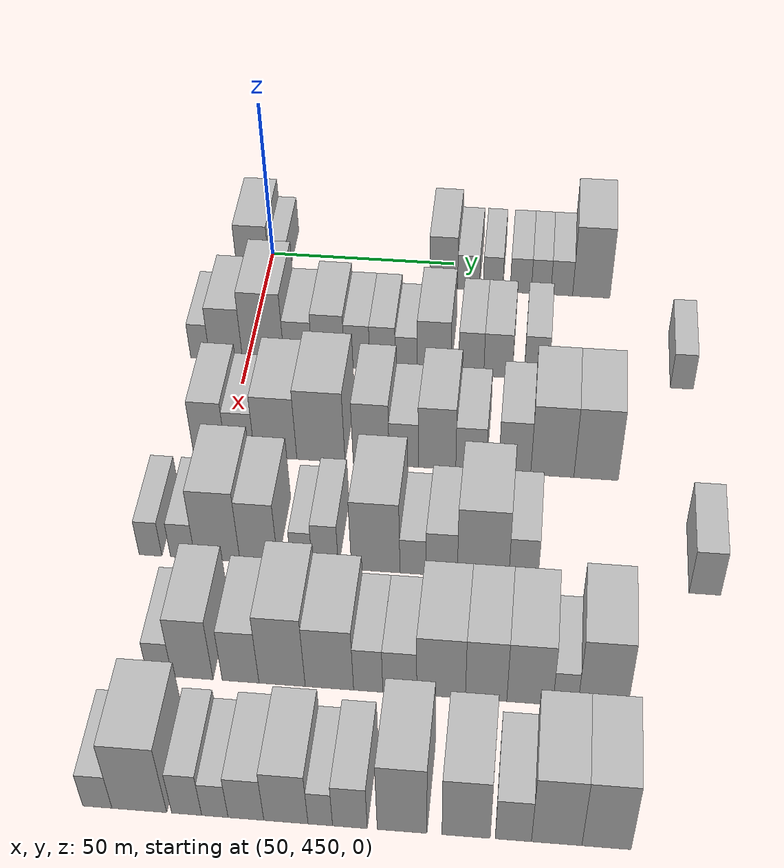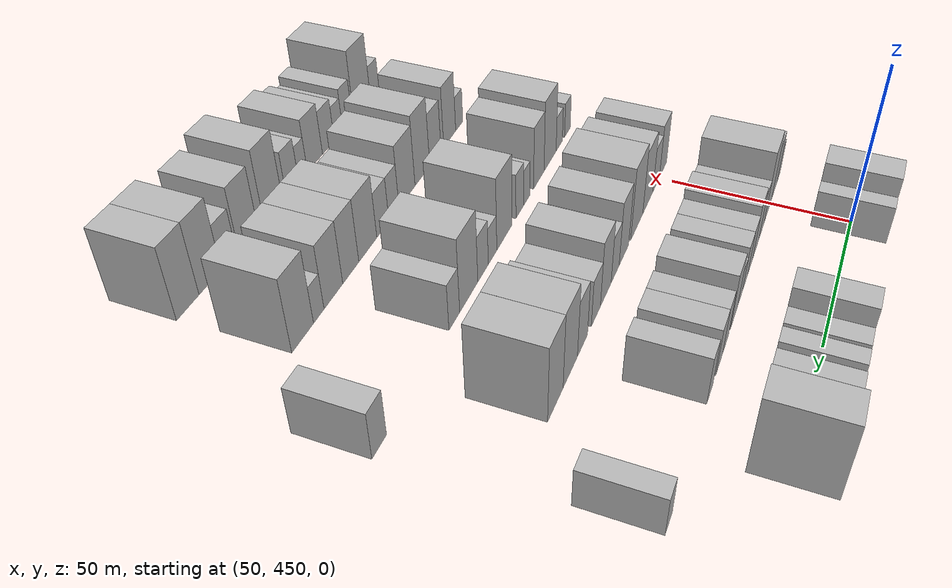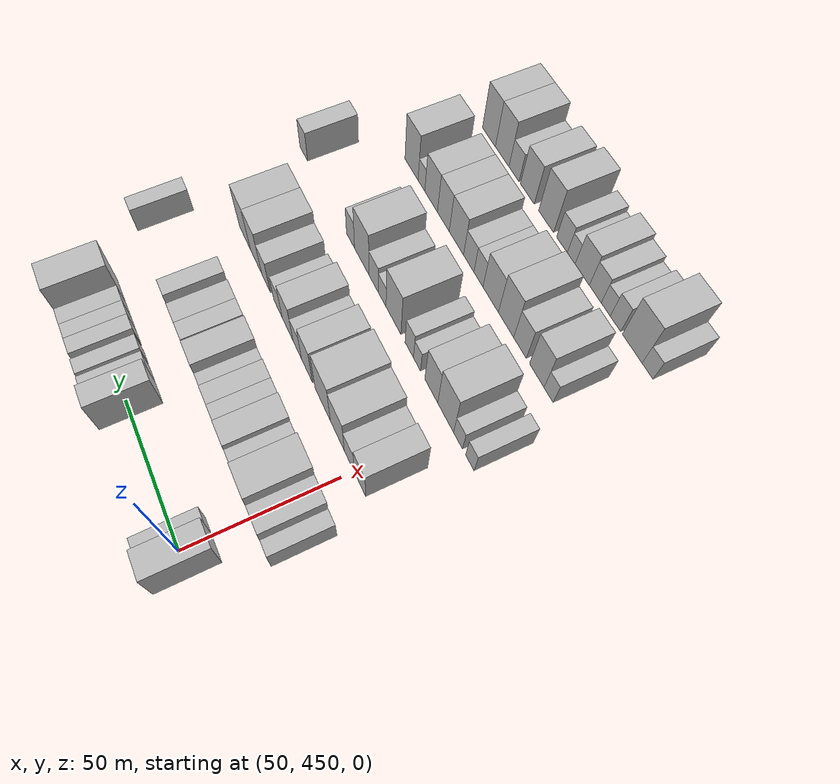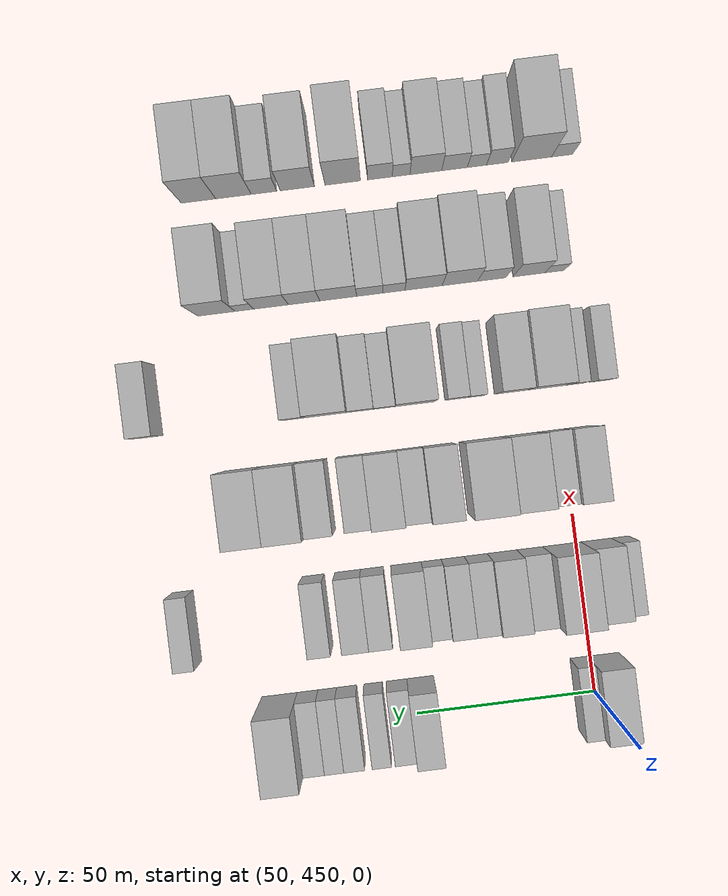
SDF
<sdf version="1.6">
 <world name="default">
  <model name="building_102">
   <static>1</static>
   <pose>50.0000 446.3662 0 0.000000 0.000000 0.000000</pose>
   <link name="link">
    <pose>0 0 9.00 0 0 0</pose>
    <collision name="collision"><geometry><box><size>20.0000 8.8635 18.0000</size></box></geometry></collision>
    <visual name="visual">
     <cast_shadows>0</cast_shadows>
     <geometry><box><size>20.0000 8.8635 18.0000</size></box></geometry>
     <material>
      <script>
       <uri>model://HANNAS_wall/materials/scripts</uri>
       <uri>model://HANNAS_wall/materials/textures</uri>
       <name>vrc/HANNAS_wall</name>
      </script>
     </material>
    </visual>
   </link>
  </model>
  <model name="building_103">
   <static>1</static>
   <pose>50.0000 453.2689 0 0.000000 0.000000 0.000000</pose>
   <link name="link">
    <pose>0 0 6.00 0 0 0</pose>
    <collision name="collision"><geometry><box><size>20.0000 4.9417 12.0000</size></box></geometry></collision>
    <visual name="visual">
     <cast_shadows>0</cast_shadows>
     <geometry><box><size>20.0000 4.9417 12.0000</size></box></geometry>
     <material>
      <script>
       <uri>model://HANNAS_wall/materials/scripts</uri>
       <uri>model://HANNAS_wall/materials/textures</uri>
       <name>vrc/HANNAS_wall</name>
      </script>
     </material>
    </visual>
   </link>
  </model>
  <model name="building_104">
   <static>1</static>
   <pose>50.0000 497.9549 0 0.000000 0.000000 0.000000</pose>
   <link name="link">
    <pose>0 0 9.00 0 0 0</pose>
    <collision name="collision"><geometry><box><size>20.0000 7.4768 18.0000</size></box></geometry></collision>
    <visual name="visual">
     <cast_shadows>0</cast_shadows>
     <geometry><box><size>20.0000 7.4768 18.0000</size></box></geometry>
     <material>
      <script>
       <uri>model://HANNAS_wall/materials/scripts</uri>
       <uri>model://HANNAS_wall/materials/textures</uri>
       <name>vrc/HANNAS_wall</name>
      </script>
     </material>
    </visual>
   </link>
  </model>
  <model name="building_105">
   <static>1</static>
   <pose>50.0000 504.6402 0 0.000000 0.000000 0.000000</pose>
   <link name="link">
    <pose>0 0 6.00 0 0 0</pose>
    <collision name="collision"><geometry><box><size>20.0000 5.8939 12.0000</size></box></geometry></collision>
    <visual name="visual">
     <cast_shadows>0</cast_shadows>
     <geometry><box><size>20.0000 5.8939 12.0000</size></box></geometry>
     <material>
      <script>
       <uri>model://HANNAS_wall/materials/scripts</uri>
       <uri>model://HANNAS_wall/materials/textures</uri>
       <name>vrc/HANNAS_wall</name>
      </script>
     </material>
    </visual>
   </link>
  </model>
  <model name="building_106">
   <static>1</static>
   <pose>50.0000 511.2139 0 0.000000 0.000000 0.000000</pose>
   <link name="link">
    <pose>0 0 6.00 0 0 0</pose>
    <collision name="collision"><geometry><box><size>20.0000 5.2535 12.0000</size></box></geometry></collision>
    <visual name="visual">
     <cast_shadows>0</cast_shadows>
     <geometry><box><size>20.0000 5.2535 12.0000</size></box></geometry>
     <material>
      <script>
       <uri>model://HANNAS_wall/materials/scripts</uri>
       <uri>model://HANNAS_wall/materials/textures</uri>
       <name>vrc/HANNAS_wall</name>
      </script>
     </material>
    </visual>
   </link>
  </model>
  <model name="building_107">
   <static>1</static>
   <pose>50.0000 518.6714 0 0.000000 0.000000 0.000000</pose>
   <link name="link">
    <pose>0 0 6.00 0 0 0</pose>
    <collision name="collision"><geometry><box><size>20.0000 5.6615 12.0000</size></box></geometry></collision>
    <visual name="visual">
     <cast_shadows>0</cast_shadows>
     <geometry><box><size>20.0000 5.6615 12.0000</size></box></geometry>
     <material>
      <script>
       <uri>model://HANNAS_wall/materials/scripts</uri>
       <uri>model://HANNAS_wall/materials/textures</uri>
       <name>vrc/HANNAS_wall</name>
      </script>
     </material>
    </visual>
   </link>
  </model>
  <model name="building_108">
   <static>1</static>
   <pose>50.0000 524.1190 0 0.000000 0.000000 0.000000</pose>
   <link name="link">
    <pose>0 0 6.00 0 0 0</pose>
    <collision name="collision"><geometry><box><size>20.0000 5.2336 12.0000</size></box></geometry></collision>
    <visual name="visual">
     <cast_shadows>0</cast_shadows>
     <geometry><box><size>20.0000 5.2336 12.0000</size></box></geometry>
     <material>
      <script>
       <uri>model://HANNAS_wall/materials/scripts</uri>
       <uri>model://HANNAS_wall/materials/textures</uri>
       <name>vrc/HANNAS_wall</name>
      </script>
     </material>
    </visual>
   </link>
  </model>
  <model name="building_109">
   <static>1</static>
   <pose>50.0000 529.6528 0 0.000000 0.000000 0.000000</pose>
   <link name="link">
    <pose>0 0 6.00 0 0 0</pose>
    <collision name="collision"><geometry><box><size>20.0000 5.8340 12.0000</size></box></geometry></collision>
    <visual name="visual">
     <cast_shadows>0</cast_shadows>
     <geometry><box><size>20.0000 5.8340 12.0000</size></box></geometry>
     <material>
      <script>
       <uri>model://HANNAS_wall/materials/scripts</uri>
       <uri>model://HANNAS_wall/materials/textures</uri>
       <name>vrc/HANNAS_wall</name>
      </script>
     </material>
    </visual>
   </link>
  </model>
  <model name="building_110">
   <static>1</static>
   <pose>50.0000 537.5482 0 0.000000 0.000000 0.000000</pose>
   <link name="link">
    <pose>0 0 12.00 0 0 0</pose>
    <collision name="collision"><geometry><box><size>20.0000 9.9569 24.0000</size></box></geometry></collision>
    <visual name="visual">
     <cast_shadows>0</cast_shadows>
     <geometry><box><size>20.0000 9.9569 24.0000</size></box></geometry>
     <material>
      <script>
       <uri>model://HANNAS_wall/materials/scripts</uri>
       <uri>model://HANNAS_wall/materials/textures</uri>
       <name>vrc/HANNAS_wall</name>
      </script>
     </material>
    </visual>
   </link>
  </model>
  <model name="building_205">
   <static>1</static>
   <pose>82.0000 437.6186 0 0.000000 0.000000 0.000000</pose>
   <link name="link">
    <pose>0 0 6.00 0 0 0</pose>
    <collision name="collision"><geometry><box><size>20.0000 4.9552 12.0000</size></box></geometry></collision>
    <visual name="visual">
     <cast_shadows>0</cast_shadows>
     <geometry><box><size>20.0000 4.9552 12.0000</size></box></geometry>
     <material>
      <script>
       <uri>model://HANNAS_wall/materials/scripts</uri>
       <uri>model://HANNAS_wall/materials/textures</uri>
       <name>vrc/HANNAS_wall</name>
      </script>
     </material>
    </visual>
   </link>
  </model>
  <model name="building_206">
   <static>1</static>
   <pose>82.0000 444.3856 0 0.000000 0.000000 0.000000</pose>
   <link name="link">
    <pose>0 0 9.00 0 0 0</pose>
    <collision name="collision"><geometry><box><size>20.0000 8.5787 18.0000</size></box></geometry></collision>
    <visual name="visual">
     <cast_shadows>0</cast_shadows>
     <geometry><box><size>20.0000 8.5787 18.0000</size></box></geometry>
     <material>
      <script>
       <uri>model://HANNAS_wall/materials/scripts</uri>
       <uri>model://HANNAS_wall/materials/textures</uri>
       <name>vrc/HANNAS_wall</name>
      </script>
     </material>
    </visual>
   </link>
  </model>
  <model name="building_207">
   <static>1</static>
   <pose>82.0000 454.0905 0 0.000000 0.000000 0.000000</pose>
   <link name="link">
    <pose>0 0 12.00 0 0 0</pose>
    <collision name="collision"><geometry><box><size>20.0000 10.8312 24.0000</size></box></geometry></collision>
    <visual name="visual">
     <cast_shadows>0</cast_shadows>
     <geometry><box><size>20.0000 10.8312 24.0000</size></box></geometry>
     <material>
      <script>
       <uri>model://HANNAS_wall/materials/scripts</uri>
       <uri>model://HANNAS_wall/materials/textures</uri>
       <name>vrc/HANNAS_wall</name>
      </script>
     </material>
    </visual>
   </link>
  </model>
  <model name="building_208">
   <static>1</static>
   <pose>82.0000 463.1431 0 0.000000 0.000000 0.000000</pose>
   <link name="link">
    <pose>0 0 7.50 0 0 0</pose>
    <collision name="collision"><geometry><box><size>20.0000 7.2739 15.0000</size></box></geometry></collision>
    <visual name="visual">
     <cast_shadows>0</cast_shadows>
     <geometry><box><size>20.0000 7.2739 15.0000</size></box></geometry>
     <material>
      <script>
       <uri>model://HANNAS_wall/materials/scripts</uri>
       <uri>model://HANNAS_wall/materials/textures</uri>
       <name>vrc/HANNAS_wall</name>
      </script>
     </material>
    </visual>
   </link>
  </model>
  <model name="building_209">
   <static>1</static>
   <pose>82.0000 470.9309 0 0.000000 0.000000 0.000000</pose>
   <link name="link">
    <pose>0 0 9.00 0 0 0</pose>
    <collision name="collision"><geometry><box><size>20.0000 8.3017 18.0000</size></box></geometry></collision>
    <visual name="visual">
     <cast_shadows>0</cast_shadows>
     <geometry><box><size>20.0000 8.3017 18.0000</size></box></geometry>
     <material>
      <script>
       <uri>model://HANNAS_wall/materials/scripts</uri>
       <uri>model://HANNAS_wall/materials/textures</uri>
       <name>vrc/HANNAS_wall</name>
      </script>
     </material>
    </visual>
   </link>
  </model>
  <model name="building_210">
   <static>1</static>
   <pose>82.0000 478.3264 0 0.000000 0.000000 0.000000</pose>
   <link name="link">
    <pose>0 0 7.50 0 0 0</pose>
    <collision name="collision"><geometry><box><size>20.0000 6.4893 15.0000</size></box></geometry></collision>
    <visual name="visual">
     <cast_shadows>0</cast_shadows>
     <geometry><box><size>20.0000 6.4893 15.0000</size></box></geometry>
     <material>
      <script>
       <uri>model://HANNAS_wall/materials/scripts</uri>
       <uri>model://HANNAS_wall/materials/textures</uri>
       <name>vrc/HANNAS_wall</name>
      </script>
     </material>
    </visual>
   </link>
  </model>
  <model name="building_211">
   <static>1</static>
   <pose>82.0000 484.8423 0 0.000000 0.000000 0.000000</pose>
   <link name="link">
    <pose>0 0 7.50 0 0 0</pose>
    <collision name="collision"><geometry><box><size>20.0000 6.5426 15.0000</size></box></geometry></collision>
    <visual name="visual">
     <cast_shadows>0</cast_shadows>
     <geometry><box><size>20.0000 6.5426 15.0000</size></box></geometry>
     <material>
      <script>
       <uri>model://HANNAS_wall/materials/scripts</uri>
       <uri>model://HANNAS_wall/materials/textures</uri>
       <name>vrc/HANNAS_wall</name>
      </script>
     </material>
    </visual>
   </link>
  </model>
  <model name="building_212">
   <static>1</static>
   <pose>82.0000 490.9392 0 0.000000 0.000000 0.000000</pose>
   <link name="link">
    <pose>0 0 6.00 0 0 0</pose>
    <collision name="collision"><geometry><box><size>20.0000 5.6511 12.0000</size></box></geometry></collision>
    <visual name="visual">
     <cast_shadows>0</cast_shadows>
     <geometry><box><size>20.0000 5.6511 12.0000</size></box></geometry>
     <material>
      <script>
       <uri>model://HANNAS_wall/materials/scripts</uri>
       <uri>model://HANNAS_wall/materials/textures</uri>
       <name>vrc/HANNAS_wall</name>
      </script>
     </material>
    </visual>
   </link>
  </model>
  <model name="building_213">
   <static>1</static>
   <pose>82.0000 498.0391 0 0.000000 0.000000 0.000000</pose>
   <link name="link">
    <pose>0 0 9.00 0 0 0</pose>
    <collision name="collision"><geometry><box><size>20.0000 8.5487 18.0000</size></box></geometry></collision>
    <visual name="visual">
     <cast_shadows>0</cast_shadows>
     <geometry><box><size>20.0000 8.5487 18.0000</size></box></geometry>
     <material>
      <script>
       <uri>model://HANNAS_wall/materials/scripts</uri>
       <uri>model://HANNAS_wall/materials/textures</uri>
       <name>vrc/HANNAS_wall</name>
      </script>
     </material>
    </visual>
   </link>
  </model>
  <model name="building_214">
   <static>1</static>
   <pose>82.0000 507.5200 0 0.000000 0.000000 0.000000</pose>
   <link name="link">
    <pose>0 0 7.50 0 0 0</pose>
    <collision name="collision"><geometry><box><size>20.0000 6.4130 15.0000</size></box></geometry></collision>
    <visual name="visual">
     <cast_shadows>0</cast_shadows>
     <geometry><box><size>20.0000 6.4130 15.0000</size></box></geometry>
     <material>
      <script>
       <uri>model://HANNAS_wall/materials/scripts</uri>
       <uri>model://HANNAS_wall/materials/textures</uri>
       <name>vrc/HANNAS_wall</name>
      </script>
     </material>
    </visual>
   </link>
  </model>
  <model name="building_215">
   <static>1</static>
   <pose>82.0000 514.3505 0 0.000000 0.000000 0.000000</pose>
   <link name="link">
    <pose>0 0 7.50 0 0 0</pose>
    <collision name="collision"><geometry><box><size>20.0000 7.2481 15.0000</size></box></geometry></collision>
    <visual name="visual">
     <cast_shadows>0</cast_shadows>
     <geometry><box><size>20.0000 7.2481 15.0000</size></box></geometry>
     <material>
      <script>
       <uri>model://HANNAS_wall/materials/scripts</uri>
       <uri>model://HANNAS_wall/materials/textures</uri>
       <name>vrc/HANNAS_wall</name>
      </script>
     </material>
    </visual>
   </link>
  </model>
  <model name="building_216">
   <static>1</static>
   <pose>82.0000 524.0894 0 0.000000 0.000000 0.000000</pose>
   <link name="link">
    <pose>0 0 7.50 0 0 0</pose>
    <collision name="collision"><geometry><box><size>20.0000 6.2297 15.0000</size></box></geometry></collision>
    <visual name="visual">
     <cast_shadows>0</cast_shadows>
     <geometry><box><size>20.0000 6.2297 15.0000</size></box></geometry>
     <material>
      <script>
       <uri>model://HANNAS_wall/materials/scripts</uri>
       <uri>model://HANNAS_wall/materials/textures</uri>
       <name>vrc/HANNAS_wall</name>
      </script>
     </material>
    </visual>
   </link>
  </model>
  <model name="building_217">
   <static>1</static>
   <pose>82.0000 560.8797 0 0.000000 0.000000 0.000000</pose>
   <link name="link">
    <pose>0 0 6.00 0 0 0</pose>
    <collision name="collision"><geometry><box><size>20.0000 5.7836 12.0000</size></box></geometry></collision>
    <visual name="visual">
     <cast_shadows>0</cast_shadows>
     <geometry><box><size>20.0000 5.7836 12.0000</size></box></geometry>
     <material>
      <script>
       <uri>model://HANNAS_wall/materials/scripts</uri>
       <uri>model://HANNAS_wall/materials/textures</uri>
       <name>vrc/HANNAS_wall</name>
      </script>
     </material>
    </visual>
   </link>
  </model>
  <model name="building_326">
   <static>1</static>
   <pose>114.0000 445.8864 0 0.000000 0.000000 0.000000</pose>
   <link name="link">
    <pose>0 0 9.00 0 0 0</pose>
    <collision name="collision"><geometry><box><size>20.0000 8.0171 18.0000</size></box></geometry></collision>
    <visual name="visual">
     <cast_shadows>0</cast_shadows>
     <geometry><box><size>20.0000 8.0171 18.0000</size></box></geometry>
     <material>
      <script>
       <uri>model://HANNAS_wall/materials/scripts</uri>
       <uri>model://HANNAS_wall/materials/textures</uri>
       <name>vrc/HANNAS_wall</name>
      </script>
     </material>
    </visual>
   </link>
  </model>
  <model name="building_327">
   <static>1</static>
   <pose>114.0000 453.4464 0 0.000000 0.000000 0.000000</pose>
   <link name="link">
    <pose>0 0 7.50 0 0 0</pose>
    <collision name="collision"><geometry><box><size>20.0000 7.1028 15.0000</size></box></geometry></collision>
    <visual name="visual">
     <cast_shadows>0</cast_shadows>
     <geometry><box><size>20.0000 7.1028 15.0000</size></box></geometry>
     <material>
      <script>
       <uri>model://HANNAS_wall/materials/scripts</uri>
       <uri>model://HANNAS_wall/materials/textures</uri>
       <name>vrc/HANNAS_wall</name>
      </script>
     </material>
    </visual>
   </link>
  </model>
  <model name="building_328">
   <static>1</static>
   <pose>114.0000 462.1535 0 0.000000 0.000000 0.000000</pose>
   <link name="link">
    <pose>0 0 10.50 0 0 0</pose>
    <collision name="collision"><geometry><box><size>20.0000 10.3115 21.0000</size></box></geometry></collision>
    <visual name="visual">
     <cast_shadows>0</cast_shadows>
     <geometry><box><size>20.0000 10.3115 21.0000</size></box></geometry>
     <material>
      <script>
       <uri>model://HANNAS_wall/materials/scripts</uri>
       <uri>model://HANNAS_wall/materials/textures</uri>
       <name>vrc/HANNAS_wall</name>
      </script>
     </material>
    </visual>
   </link>
  </model>
  <model name="building_329">
   <static>1</static>
   <pose>114.0000 473.1919 0 0.000000 0.000000 0.000000</pose>
   <link name="link">
    <pose>0 0 12.00 0 0 0</pose>
    <collision name="collision"><geometry><box><size>20.0000 11.7653 24.0000</size></box></geometry></collision>
    <visual name="visual">
     <cast_shadows>0</cast_shadows>
     <geometry><box><size>20.0000 11.7653 24.0000</size></box></geometry>
     <material>
      <script>
       <uri>model://HANNAS_wall/materials/scripts</uri>
       <uri>model://HANNAS_wall/materials/textures</uri>
       <name>vrc/HANNAS_wall</name>
      </script>
     </material>
    </visual>
   </link>
  </model>
  <model name="building_330">
   <static>1</static>
   <pose>114.0000 485.4593 0 0.000000 0.000000 0.000000</pose>
   <link name="link">
    <pose>0 0 10.50 0 0 0</pose>
    <collision name="collision"><geometry><box><size>20.0000 8.7696 21.0000</size></box></geometry></collision>
    <visual name="visual">
     <cast_shadows>0</cast_shadows>
     <geometry><box><size>20.0000 8.7696 21.0000</size></box></geometry>
     <material>
      <script>
       <uri>model://HANNAS_wall/materials/scripts</uri>
       <uri>model://HANNAS_wall/materials/textures</uri>
       <name>vrc/HANNAS_wall</name>
      </script>
     </material>
    </visual>
   </link>
  </model>
  <model name="building_331">
   <static>1</static>
   <pose>114.0000 493.3688 0 0.000000 0.000000 0.000000</pose>
   <link name="link">
    <pose>0 0 7.50 0 0 0</pose>
    <collision name="collision"><geometry><box><size>20.0000 7.0493 15.0000</size></box></geometry></collision>
    <visual name="visual">
     <cast_shadows>0</cast_shadows>
     <geometry><box><size>20.0000 7.0493 15.0000</size></box></geometry>
     <material>
      <script>
       <uri>model://HANNAS_wall/materials/scripts</uri>
       <uri>model://HANNAS_wall/materials/textures</uri>
       <name>vrc/HANNAS_wall</name>
      </script>
     </material>
    </visual>
   </link>
  </model>
  <model name="building_332">
   <static>1</static>
   <pose>114.0000 501.4157 0 0.000000 0.000000 0.000000</pose>
   <link name="link">
    <pose>0 0 10.50 0 0 0</pose>
    <collision name="collision"><geometry><box><size>20.0000 9.0444 21.0000</size></box></geometry></collision>
    <visual name="visual">
     <cast_shadows>0</cast_shadows>
     <geometry><box><size>20.0000 9.0444 21.0000</size></box></geometry>
     <material>
      <script>
       <uri>model://HANNAS_wall/materials/scripts</uri>
       <uri>model://HANNAS_wall/materials/textures</uri>
       <name>vrc/HANNAS_wall</name>
      </script>
     </material>
    </visual>
   </link>
  </model>
  <model name="building_333">
   <static>1</static>
   <pose>114.0000 509.6195 0 0.000000 0.000000 0.000000</pose>
   <link name="link">
    <pose>0 0 7.50 0 0 0</pose>
    <collision name="collision"><geometry><box><size>20.0000 7.3633 15.0000</size></box></geometry></collision>
    <visual name="visual">
     <cast_shadows>0</cast_shadows>
     <geometry><box><size>20.0000 7.3633 15.0000</size></box></geometry>
     <material>
      <script>
       <uri>model://HANNAS_wall/materials/scripts</uri>
       <uri>model://HANNAS_wall/materials/textures</uri>
       <name>vrc/HANNAS_wall</name>
      </script>
     </material>
    </visual>
   </link>
  </model>
  <model name="building_334">
   <static>1</static>
   <pose>114.0000 520.1396 0 0.000000 0.000000 0.000000</pose>
   <link name="link">
    <pose>0 0 9.00 0 0 0</pose>
    <collision name="collision"><geometry><box><size>20.0000 7.6771 18.0000</size></box></geometry></collision>
    <visual name="visual">
     <cast_shadows>0</cast_shadows>
     <geometry><box><size>20.0000 7.6771 18.0000</size></box></geometry>
     <material>
      <script>
       <uri>model://HANNAS_wall/materials/scripts</uri>
       <uri>model://HANNAS_wall/materials/textures</uri>
       <name>vrc/HANNAS_wall</name>
      </script>
     </material>
    </visual>
   </link>
  </model>
  <model name="building_335">
   <static>1</static>
   <pose>114.0000 529.1671 0 0.000000 0.000000 0.000000</pose>
   <link name="link">
    <pose>0 0 12.00 0 0 0</pose>
    <collision name="collision"><geometry><box><size>20.0000 10.3779 24.0000</size></box></geometry></collision>
    <visual name="visual">
     <cast_shadows>0</cast_shadows>
     <geometry><box><size>20.0000 10.3779 24.0000</size></box></geometry>
     <material>
      <script>
       <uri>model://HANNAS_wall/materials/scripts</uri>
       <uri>model://HANNAS_wall/materials/textures</uri>
       <name>vrc/HANNAS_wall</name>
      </script>
     </material>
    </visual>
   </link>
  </model>
  <model name="building_336">
   <static>1</static>
   <pose>114.0000 539.6617 0 0.000000 0.000000 0.000000</pose>
   <link name="link">
    <pose>0 0 12.00 0 0 0</pose>
    <collision name="collision"><geometry><box><size>20.0000 10.6111 24.0000</size></box></geometry></collision>
    <visual name="visual">
     <cast_shadows>0</cast_shadows>
     <geometry><box><size>20.0000 10.6111 24.0000</size></box></geometry>
     <material>
      <script>
       <uri>model://HANNAS_wall/materials/scripts</uri>
       <uri>model://HANNAS_wall/materials/textures</uri>
       <name>vrc/HANNAS_wall</name>
      </script>
     </material>
    </visual>
   </link>
  </model>
  <model name="building_450">
   <static>1</static>
   <pose>146.0000 437.9888 0 0.000000 0.000000 0.000000</pose>
   <link name="link">
    <pose>0 0 6.00 0 0 0</pose>
    <collision name="collision"><geometry><box><size>20.0000 5.2981 12.0000</size></box></geometry></collision>
    <visual name="visual">
     <cast_shadows>0</cast_shadows>
     <geometry><box><size>20.0000 5.2981 12.0000</size></box></geometry>
     <material>
      <script>
       <uri>model://HANNAS_wall/materials/scripts</uri>
       <uri>model://HANNAS_wall/materials/textures</uri>
       <name>vrc/HANNAS_wall</name>
      </script>
     </material>
    </visual>
   </link>
  </model>
  <model name="building_451">
   <static>1</static>
   <pose>146.0000 445.4780 0 0.000000 0.000000 0.000000</pose>
   <link name="link">
    <pose>0 0 6.00 0 0 0</pose>
    <collision name="collision"><geometry><box><size>20.0000 5.6802 12.0000</size></box></geometry></collision>
    <visual name="visual">
     <cast_shadows>0</cast_shadows>
     <geometry><box><size>20.0000 5.6802 12.0000</size></box></geometry>
     <material>
      <script>
       <uri>model://HANNAS_wall/materials/scripts</uri>
       <uri>model://HANNAS_wall/materials/textures</uri>
       <name>vrc/HANNAS_wall</name>
      </script>
     </material>
    </visual>
   </link>
  </model>
  <model name="building_452">
   <static>1</static>
   <pose>146.0000 453.5496 0 0.000000 0.000000 0.000000</pose>
   <link name="link">
    <pose>0 0 12.00 0 0 0</pose>
    <collision name="collision"><geometry><box><size>20.0000 10.4631 24.0000</size></box></geometry></collision>
    <visual name="visual">
     <cast_shadows>0</cast_shadows>
     <geometry><box><size>20.0000 10.4631 24.0000</size></box></geometry>
     <material>
      <script>
       <uri>model://HANNAS_wall/materials/scripts</uri>
       <uri>model://HANNAS_wall/materials/textures</uri>
       <name>vrc/HANNAS_wall</name>
      </script>
     </material>
    </visual>
   </link>
  </model>
  <model name="building_453">
   <static>1</static>
   <pose>146.0000 463.1557 0 0.000000 0.000000 0.000000</pose>
   <link name="link">
    <pose>0 0 10.50 0 0 0</pose>
    <collision name="collision"><geometry><box><size>20.0000 8.7492 21.0000</size></box></geometry></collision>
    <visual name="visual">
     <cast_shadows>0</cast_shadows>
     <geometry><box><size>20.0000 8.7492 21.0000</size></box></geometry>
     <material>
      <script>
       <uri>model://HANNAS_wall/materials/scripts</uri>
       <uri>model://HANNAS_wall/materials/textures</uri>
       <name>vrc/HANNAS_wall</name>
      </script>
     </material>
    </visual>
   </link>
  </model>
  <model name="building_454">
   <static>1</static>
   <pose>146.0000 473.0037 0 0.000000 0.000000 0.000000</pose>
   <link name="link">
    <pose>0 0 6.00 0 0 0</pose>
    <collision name="collision"><geometry><box><size>20.0000 4.9467 12.0000</size></box></geometry></collision>
    <visual name="visual">
     <cast_shadows>0</cast_shadows>
     <geometry><box><size>20.0000 4.9467 12.0000</size></box></geometry>
     <material>
      <script>
       <uri>model://HANNAS_wall/materials/scripts</uri>
       <uri>model://HANNAS_wall/materials/textures</uri>
       <name>vrc/HANNAS_wall</name>
      </script>
     </material>
    </visual>
   </link>
  </model>
  <model name="building_455">
   <static>1</static>
   <pose>146.0000 478.4853 0 0.000000 0.000000 0.000000</pose>
   <link name="link">
    <pose>0 0 7.50 0 0 0</pose>
    <collision name="collision"><geometry><box><size>20.0000 6.0164 15.0000</size></box></geometry></collision>
    <visual name="visual">
     <cast_shadows>0</cast_shadows>
     <geometry><box><size>20.0000 6.0164 15.0000</size></box></geometry>
     <material>
      <script>
       <uri>model://HANNAS_wall/materials/scripts</uri>
       <uri>model://HANNAS_wall/materials/textures</uri>
       <name>vrc/HANNAS_wall</name>
      </script>
     </material>
    </visual>
   </link>
  </model>
  <model name="building_456">
   <static>1</static>
   <pose>146.0000 490.0346 0 0.000000 0.000000 0.000000</pose>
   <link name="link">
    <pose>0 0 12.00 0 0 0</pose>
    <collision name="collision"><geometry><box><size>20.0000 11.0824 24.0000</size></box></geometry></collision>
    <visual name="visual">
     <cast_shadows>0</cast_shadows>
     <geometry><box><size>20.0000 11.0824 24.0000</size></box></geometry>
     <material>
      <script>
       <uri>model://HANNAS_wall/materials/scripts</uri>
       <uri>model://HANNAS_wall/materials/textures</uri>
       <name>vrc/HANNAS_wall</name>
      </script>
     </material>
    </visual>
   </link>
  </model>
  <model name="building_457">
   <static>1</static>
   <pose>146.0000 498.5606 0 0.000000 0.000000 0.000000</pose>
   <link name="link">
    <pose>0 0 6.00 0 0 0</pose>
    <collision name="collision"><geometry><box><size>20.0000 5.9695 12.0000</size></box></geometry></collision>
    <visual name="visual">
     <cast_shadows>0</cast_shadows>
     <geometry><box><size>20.0000 5.9695 12.0000</size></box></geometry>
     <material>
      <script>
       <uri>model://HANNAS_wall/materials/scripts</uri>
       <uri>model://HANNAS_wall/materials/textures</uri>
       <name>vrc/HANNAS_wall</name>
      </script>
     </material>
    </visual>
   </link>
  </model>
  <model name="building_458">
   <static>1</static>
   <pose>146.0000 505.1028 0 0.000000 0.000000 0.000000</pose>
   <link name="link">
    <pose>0 0 7.50 0 0 0</pose>
    <collision name="collision"><geometry><box><size>20.0000 7.1149 15.0000</size></box></geometry></collision>
    <visual name="visual">
     <cast_shadows>0</cast_shadows>
     <geometry><box><size>20.0000 7.1149 15.0000</size></box></geometry>
     <material>
      <script>
       <uri>model://HANNAS_wall/materials/scripts</uri>
       <uri>model://HANNAS_wall/materials/textures</uri>
       <name>vrc/HANNAS_wall</name>
      </script>
     </material>
    </visual>
   </link>
  </model>
  <model name="building_459">
   <static>1</static>
   <pose>146.0000 514.4887 0 0.000000 0.000000 0.000000</pose>
   <link name="link">
    <pose>0 0 12.00 0 0 0</pose>
    <collision name="collision"><geometry><box><size>20.0000 11.6567 24.0000</size></box></geometry></collision>
    <visual name="visual">
     <cast_shadows>0</cast_shadows>
     <geometry><box><size>20.0000 11.6567 24.0000</size></box></geometry>
     <material>
      <script>
       <uri>model://HANNAS_wall/materials/scripts</uri>
       <uri>model://HANNAS_wall/materials/textures</uri>
       <name>vrc/HANNAS_wall</name>
      </script>
     </material>
    </visual>
   </link>
  </model>
  <model name="building_460">
   <static>1</static>
   <pose>146.0000 523.6121 0 0.000000 0.000000 0.000000</pose>
   <link name="link">
    <pose>0 0 7.50 0 0 0</pose>
    <collision name="collision"><geometry><box><size>20.0000 6.5901 15.0000</size></box></geometry></collision>
    <visual name="visual">
     <cast_shadows>0</cast_shadows>
     <geometry><box><size>20.0000 6.5901 15.0000</size></box></geometry>
     <material>
      <script>
       <uri>model://HANNAS_wall/materials/scripts</uri>
       <uri>model://HANNAS_wall/materials/textures</uri>
       <name>vrc/HANNAS_wall</name>
      </script>
     </material>
    </visual>
   </link>
  </model>
  <model name="building_461">
   <static>1</static>
   <pose>146.0000 564.5227 0 0.000000 0.000000 0.000000</pose>
   <link name="link">
    <pose>0 0 7.50 0 0 0</pose>
    <collision name="collision"><geometry><box><size>20.0000 7.0771 15.0000</size></box></geometry></collision>
    <visual name="visual">
     <cast_shadows>0</cast_shadows>
     <geometry><box><size>20.0000 7.0771 15.0000</size></box></geometry>
     <material>
      <script>
       <uri>model://HANNAS_wall/materials/scripts</uri>
       <uri>model://HANNAS_wall/materials/textures</uri>
       <name>vrc/HANNAS_wall</name>
      </script>
     </material>
    </visual>
   </link>
  </model>
  <model name="building_570">
   <static>1</static>
   <pose>178.0000 446.6551 0 0.000000 0.000000 0.000000</pose>
   <link name="link">
    <pose>0 0 6.00 0 0 0</pose>
    <collision name="collision"><geometry><box><size>20.0000 5.4585 12.0000</size></box></geometry></collision>
    <visual name="visual">
     <cast_shadows>0</cast_shadows>
     <geometry><box><size>20.0000 5.4585 12.0000</size></box></geometry>
     <material>
      <script>
       <uri>model://HANNAS_wall/materials/scripts</uri>
       <uri>model://HANNAS_wall/materials/textures</uri>
       <name>vrc/HANNAS_wall</name>
      </script>
     </material>
    </visual>
   </link>
  </model>
  <model name="building_571">
   <static>1</static>
   <pose>178.0000 453.8465 0 0.000000 0.000000 0.000000</pose>
   <link name="link">
    <pose>0 0 10.50 0 0 0</pose>
    <collision name="collision"><geometry><box><size>20.0000 8.9242 21.0000</size></box></geometry></collision>
    <visual name="visual">
     <cast_shadows>0</cast_shadows>
     <geometry><box><size>20.0000 8.9242 21.0000</size></box></geometry>
     <material>
      <script>
       <uri>model://HANNAS_wall/materials/scripts</uri>
       <uri>model://HANNAS_wall/materials/textures</uri>
       <name>vrc/HANNAS_wall</name>
      </script>
     </material>
    </visual>
   </link>
  </model>
  <model name="building_572">
   <static>1</static>
   <pose>178.0000 464.3055 0 0.000000 0.000000 0.000000</pose>
   <link name="link">
    <pose>0 0 9.00 0 0 0</pose>
    <collision name="collision"><geometry><box><size>20.0000 7.9939 18.0000</size></box></geometry></collision>
    <visual name="visual">
     <cast_shadows>0</cast_shadows>
     <geometry><box><size>20.0000 7.9939 18.0000</size></box></geometry>
     <material>
      <script>
       <uri>model://HANNAS_wall/materials/scripts</uri>
       <uri>model://HANNAS_wall/materials/textures</uri>
       <name>vrc/HANNAS_wall</name>
      </script>
     </material>
    </visual>
   </link>
  </model>
  <model name="building_573">
   <static>1</static>
   <pose>178.0000 473.3085 0 0.000000 0.000000 0.000000</pose>
   <link name="link">
    <pose>0 0 12.00 0 0 0</pose>
    <collision name="collision"><geometry><box><size>20.0000 10.0121 24.0000</size></box></geometry></collision>
    <visual name="visual">
     <cast_shadows>0</cast_shadows>
     <geometry><box><size>20.0000 10.0121 24.0000</size></box></geometry>
     <material>
      <script>
       <uri>model://HANNAS_wall/materials/scripts</uri>
       <uri>model://HANNAS_wall/materials/textures</uri>
       <name>vrc/HANNAS_wall</name>
      </script>
     </material>
    </visual>
   </link>
  </model>
  <model name="building_574">
   <static>1</static>
   <pose>178.0000 483.5354 0 0.000000 0.000000 0.000000</pose>
   <link name="link">
    <pose>0 0 10.50 0 0 0</pose>
    <collision name="collision"><geometry><box><size>20.0000 10.4417 21.0000</size></box></geometry></collision>
    <visual name="visual">
     <cast_shadows>0</cast_shadows>
     <geometry><box><size>20.0000 10.4417 21.0000</size></box></geometry>
     <material>
      <script>
       <uri>model://HANNAS_wall/materials/scripts</uri>
       <uri>model://HANNAS_wall/materials/textures</uri>
       <name>vrc/HANNAS_wall</name>
      </script>
     </material>
    </visual>
   </link>
  </model>
  <model name="building_575">
   <static>1</static>
   <pose>178.0000 491.8976 0 0.000000 0.000000 0.000000</pose>
   <link name="link">
    <pose>0 0 7.50 0 0 0</pose>
    <collision name="collision"><geometry><box><size>20.0000 6.2828 15.0000</size></box></geometry></collision>
    <visual name="visual">
     <cast_shadows>0</cast_shadows>
     <geometry><box><size>20.0000 6.2828 15.0000</size></box></geometry>
     <material>
      <script>
       <uri>model://HANNAS_wall/materials/scripts</uri>
       <uri>model://HANNAS_wall/materials/textures</uri>
       <name>vrc/HANNAS_wall</name>
      </script>
     </material>
    </visual>
   </link>
  </model>
  <model name="building_576">
   <static>1</static>
   <pose>178.0000 498.6908 0 0.000000 0.000000 0.000000</pose>
   <link name="link">
    <pose>0 0 7.50 0 0 0</pose>
    <collision name="collision"><geometry><box><size>20.0000 7.3035 15.0000</size></box></geometry></collision>
    <visual name="visual">
     <cast_shadows>0</cast_shadows>
     <geometry><box><size>20.0000 7.3035 15.0000</size></box></geometry>
     <material>
      <script>
       <uri>model://HANNAS_wall/materials/scripts</uri>
       <uri>model://HANNAS_wall/materials/textures</uri>
       <name>vrc/HANNAS_wall</name>
      </script>
     </material>
    </visual>
   </link>
  </model>
  <model name="building_577">
   <static>1</static>
   <pose>178.0000 507.5267 0 0.000000 0.000000 0.000000</pose>
   <link name="link">
    <pose>0 0 10.50 0 0 0</pose>
    <collision name="collision"><geometry><box><size>20.0000 10.3683 21.0000</size></box></geometry></collision>
    <visual name="visual">
     <cast_shadows>0</cast_shadows>
     <geometry><box><size>20.0000 10.3683 21.0000</size></box></geometry>
     <material>
      <script>
       <uri>model://HANNAS_wall/materials/scripts</uri>
       <uri>model://HANNAS_wall/materials/textures</uri>
       <name>vrc/HANNAS_wall</name>
      </script>
     </material>
    </visual>
   </link>
  </model>
  <model name="building_578">
   <static>1</static>
   <pose>178.0000 517.1298 0 0.000000 0.000000 0.000000</pose>
   <link name="link">
    <pose>0 0 10.50 0 0 0</pose>
    <collision name="collision"><geometry><box><size>20.0000 8.8379 21.0000</size></box></geometry></collision>
    <visual name="visual">
     <cast_shadows>0</cast_shadows>
     <geometry><box><size>20.0000 8.8379 21.0000</size></box></geometry>
     <material>
      <script>
       <uri>model://HANNAS_wall/materials/scripts</uri>
       <uri>model://HANNAS_wall/materials/textures</uri>
       <name>vrc/HANNAS_wall</name>
      </script>
     </material>
    </visual>
   </link>
  </model>
  <model name="building_579">
   <static>1</static>
   <pose>178.0000 526.4385 0 0.000000 0.000000 0.000000</pose>
   <link name="link">
    <pose>0 0 10.50 0 0 0</pose>
    <collision name="collision"><geometry><box><size>20.0000 9.7797 21.0000</size></box></geometry></collision>
    <visual name="visual">
     <cast_shadows>0</cast_shadows>
     <geometry><box><size>20.0000 9.7797 21.0000</size></box></geometry>
     <material>
      <script>
       <uri>model://HANNAS_wall/materials/scripts</uri>
       <uri>model://HANNAS_wall/materials/textures</uri>
       <name>vrc/HANNAS_wall</name>
      </script>
     </material>
    </visual>
   </link>
  </model>
  <model name="building_580">
   <static>1</static>
   <pose>178.0000 533.9673 0 0.000000 0.000000 0.000000</pose>
   <link name="link">
    <pose>0 0 6.00 0 0 0</pose>
    <collision name="collision"><geometry><box><size>20.0000 5.2778 12.0000</size></box></geometry></collision>
    <visual name="visual">
     <cast_shadows>0</cast_shadows>
     <geometry><box><size>20.0000 5.2778 12.0000</size></box></geometry>
     <material>
      <script>
       <uri>model://HANNAS_wall/materials/scripts</uri>
       <uri>model://HANNAS_wall/materials/textures</uri>
       <name>vrc/HANNAS_wall</name>
      </script>
     </material>
    </visual>
   </link>
  </model>
  <model name="building_581">
   <static>1</static>
   <pose>178.0000 541.8589 0 0.000000 0.000000 0.000000</pose>
   <link name="link">
    <pose>0 0 12.00 0 0 0</pose>
    <collision name="collision"><geometry><box><size>20.0000 10.5054 24.0000</size></box></geometry></collision>
    <visual name="visual">
     <cast_shadows>0</cast_shadows>
     <geometry><box><size>20.0000 10.5054 24.0000</size></box></geometry>
     <material>
      <script>
       <uri>model://HANNAS_wall/materials/scripts</uri>
       <uri>model://HANNAS_wall/materials/textures</uri>
       <name>vrc/HANNAS_wall</name>
      </script>
     </material>
    </visual>
   </link>
  </model>
  <model name="building_693">
   <static>1</static>
   <pose>210.0000 440.4524 0 0.000000 0.000000 0.000000</pose>
   <link name="link">
    <pose>0 0 6.00 0 0 0</pose>
    <collision name="collision"><geometry><box><size>20.0000 5.9746 12.0000</size></box></geometry></collision>
    <visual name="visual">
     <cast_shadows>0</cast_shadows>
     <geometry><box><size>20.0000 5.9746 12.0000</size></box></geometry>
     <material>
      <script>
       <uri>model://HANNAS_wall/materials/scripts</uri>
       <uri>model://HANNAS_wall/materials/textures</uri>
       <name>vrc/HANNAS_wall</name>
      </script>
     </material>
    </visual>
   </link>
  </model>
  <model name="building_694">
   <static>1</static>
   <pose>210.0000 449.0525 0 0.000000 0.000000 0.000000</pose>
   <link name="link">
    <pose>0 0 12.00 0 0 0</pose>
    <collision name="collision"><geometry><box><size>20.0000 11.2256 24.0000</size></box></geometry></collision>
    <visual name="visual">
     <cast_shadows>0</cast_shadows>
     <geometry><box><size>20.0000 11.2256 24.0000</size></box></geometry>
     <material>
      <script>
       <uri>model://HANNAS_wall/materials/scripts</uri>
       <uri>model://HANNAS_wall/materials/textures</uri>
       <name>vrc/HANNAS_wall</name>
      </script>
     </material>
    </visual>
   </link>
  </model>
  <model name="building_695">
   <static>1</static>
   <pose>210.0000 458.7242 0 0.000000 0.000000 0.000000</pose>
   <link name="link">
    <pose>0 0 7.50 0 0 0</pose>
    <collision name="collision"><geometry><box><size>20.0000 6.1180 15.0000</size></box></geometry></collision>
    <visual name="visual">
     <cast_shadows>0</cast_shadows>
     <geometry><box><size>20.0000 6.1180 15.0000</size></box></geometry>
     <material>
      <script>
       <uri>model://HANNAS_wall/materials/scripts</uri>
       <uri>model://HANNAS_wall/materials/textures</uri>
       <name>vrc/HANNAS_wall</name>
      </script>
     </material>
    </visual>
   </link>
  </model>
  <model name="building_696">
   <static>1</static>
   <pose>210.0000 464.4675 0 0.000000 0.000000 0.000000</pose>
   <link name="link">
    <pose>0 0 6.00 0 0 0</pose>
    <collision name="collision"><geometry><box><size>20.0000 5.3685 12.0000</size></box></geometry></collision>
    <visual name="visual">
     <cast_shadows>0</cast_shadows>
     <geometry><box><size>20.0000 5.3685 12.0000</size></box></geometry>
     <material>
      <script>
       <uri>model://HANNAS_wall/materials/scripts</uri>
       <uri>model://HANNAS_wall/materials/textures</uri>
       <name>vrc/HANNAS_wall</name>
      </script>
     </material>
    </visual>
   </link>
  </model>
  <model name="building_697">
   <static>1</static>
   <pose>210.0000 470.7827 0 0.000000 0.000000 0.000000</pose>
   <link name="link">
    <pose>0 0 7.50 0 0 0</pose>
    <collision name="collision"><geometry><box><size>20.0000 7.2620 15.0000</size></box></geometry></collision>
    <visual name="visual">
     <cast_shadows>0</cast_shadows>
     <geometry><box><size>20.0000 7.2620 15.0000</size></box></geometry>
     <material>
      <script>
       <uri>model://HANNAS_wall/materials/scripts</uri>
       <uri>model://HANNAS_wall/materials/textures</uri>
       <name>vrc/HANNAS_wall</name>
      </script>
     </material>
    </visual>
   </link>
  </model>
  <model name="building_698">
   <static>1</static>
   <pose>210.0000 478.8828 0 0.000000 0.000000 0.000000</pose>
   <link name="link">
    <pose>0 0 9.00 0 0 0</pose>
    <collision name="collision"><geometry><box><size>20.0000 8.9381 18.0000</size></box></geometry></collision>
    <visual name="visual">
     <cast_shadows>0</cast_shadows>
     <geometry><box><size>20.0000 8.9381 18.0000</size></box></geometry>
     <material>
      <script>
       <uri>model://HANNAS_wall/materials/scripts</uri>
       <uri>model://HANNAS_wall/materials/textures</uri>
       <name>vrc/HANNAS_wall</name>
      </script>
     </material>
    </visual>
   </link>
  </model>
  <model name="building_699">
   <static>1</static>
   <pose>210.0000 485.8337 0 0.000000 0.000000 0.000000</pose>
   <link name="link">
    <pose>0 0 6.00 0 0 0</pose>
    <collision name="collision"><geometry><box><size>20.0000 4.9637 12.0000</size></box></geometry></collision>
    <visual name="visual">
     <cast_shadows>0</cast_shadows>
     <geometry><box><size>20.0000 4.9637 12.0000</size></box></geometry>
     <material>
      <script>
       <uri>model://HANNAS_wall/materials/scripts</uri>
       <uri>model://HANNAS_wall/materials/textures</uri>
       <name>vrc/HANNAS_wall</name>
      </script>
     </material>
    </visual>
   </link>
  </model>
  <model name="building_700">
   <static>1</static>
   <pose>210.0000 491.8097 0 0.000000 0.000000 0.000000</pose>
   <link name="link">
    <pose>0 0 7.50 0 0 0</pose>
    <collision name="collision"><geometry><box><size>20.0000 6.9884 15.0000</size></box></geometry></collision>
    <visual name="visual">
     <cast_shadows>0</cast_shadows>
     <geometry><box><size>20.0000 6.9884 15.0000</size></box></geometry>
     <material>
      <script>
       <uri>model://HANNAS_wall/materials/scripts</uri>
       <uri>model://HANNAS_wall/materials/textures</uri>
       <name>vrc/HANNAS_wall</name>
      </script>
     </material>
    </visual>
   </link>
  </model>
  <model name="building_701">
   <static>1</static>
   <pose>210.0000 502.2924 0 0.000000 0.000000 0.000000</pose>
   <link name="link">
    <pose>0 0 12.00 0 0 0</pose>
    <collision name="collision"><geometry><box><size>20.0000 9.9770 24.0000</size></box></geometry></collision>
    <visual name="visual">
     <cast_shadows>0</cast_shadows>
     <geometry><box><size>20.0000 9.9770 24.0000</size></box></geometry>
     <material>
      <script>
       <uri>model://HANNAS_wall/materials/scripts</uri>
       <uri>model://HANNAS_wall/materials/textures</uri>
       <name>vrc/HANNAS_wall</name>
      </script>
     </material>
    </visual>
   </link>
  </model>
  <model name="building_702">
   <static>1</static>
   <pose>210.0000 515.0965 0 0.000000 0.000000 0.000000</pose>
   <link name="link">
    <pose>0 0 10.50 0 0 0</pose>
    <collision name="collision"><geometry><box><size>20.0000 9.6312 21.0000</size></box></geometry></collision>
    <visual name="visual">
     <cast_shadows>0</cast_shadows>
     <geometry><box><size>20.0000 9.6312 21.0000</size></box></geometry>
     <material>
      <script>
       <uri>model://HANNAS_wall/materials/scripts</uri>
       <uri>model://HANNAS_wall/materials/textures</uri>
       <name>vrc/HANNAS_wall</name>
      </script>
     </material>
    </visual>
   </link>
  </model>
  <model name="building_703">
   <static>1</static>
   <pose>210.0000 524.5086 0 0.000000 0.000000 0.000000</pose>
   <link name="link">
    <pose>0 0 7.50 0 0 0</pose>
    <collision name="collision"><geometry><box><size>20.0000 7.1929 15.0000</size></box></geometry></collision>
    <visual name="visual">
     <cast_shadows>0</cast_shadows>
     <geometry><box><size>20.0000 7.1929 15.0000</size></box></geometry>
     <material>
      <script>
       <uri>model://HANNAS_wall/materials/scripts</uri>
       <uri>model://HANNAS_wall/materials/textures</uri>
       <name>vrc/HANNAS_wall</name>
      </script>
     </material>
    </visual>
   </link>
  </model>
  <model name="building_704">
   <static>1</static>
   <pose>210.0000 533.1137 0 0.000000 0.000000 0.000000</pose>
   <link name="link">
    <pose>0 0 12.00 0 0 0</pose>
    <collision name="collision"><geometry><box><size>20.0000 10.0175 24.0000</size></box></geometry></collision>
    <visual name="visual">
     <cast_shadows>0</cast_shadows>
     <geometry><box><size>20.0000 10.0175 24.0000</size></box></geometry>
     <material>
      <script>
       <uri>model://HANNAS_wall/materials/scripts</uri>
       <uri>model://HANNAS_wall/materials/textures</uri>
       <name>vrc/HANNAS_wall</name>
      </script>
     </material>
    </visual>
   </link>
  </model>
  <model name="building_705">
   <static>1</static>
   <pose>210.0000 542.9847 0 0.000000 0.000000 0.000000</pose>
   <link name="link">
    <pose>0 0 12.00 0 0 0</pose>
    <collision name="collision"><geometry><box><size>20.0000 9.7244 24.0000</size></box></geometry></collision>
    <visual name="visual">
     <cast_shadows>0</cast_shadows>
     <geometry><box><size>20.0000 9.7244 24.0000</size></box></geometry>
     <material>
      <script>
       <uri>model://HANNAS_wall/materials/scripts</uri>
       <uri>model://HANNAS_wall/materials/textures</uri>
       <name>vrc/HANNAS_wall</name>
      </script>
     </material>
    </visual>
   </link>
  </model>
 </world>
</sdf>
